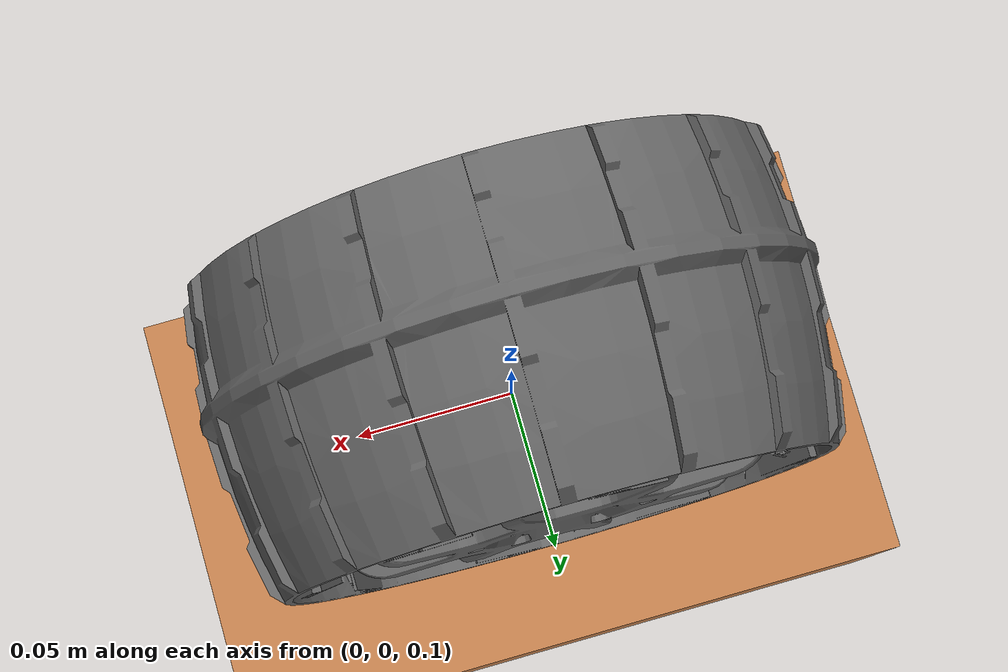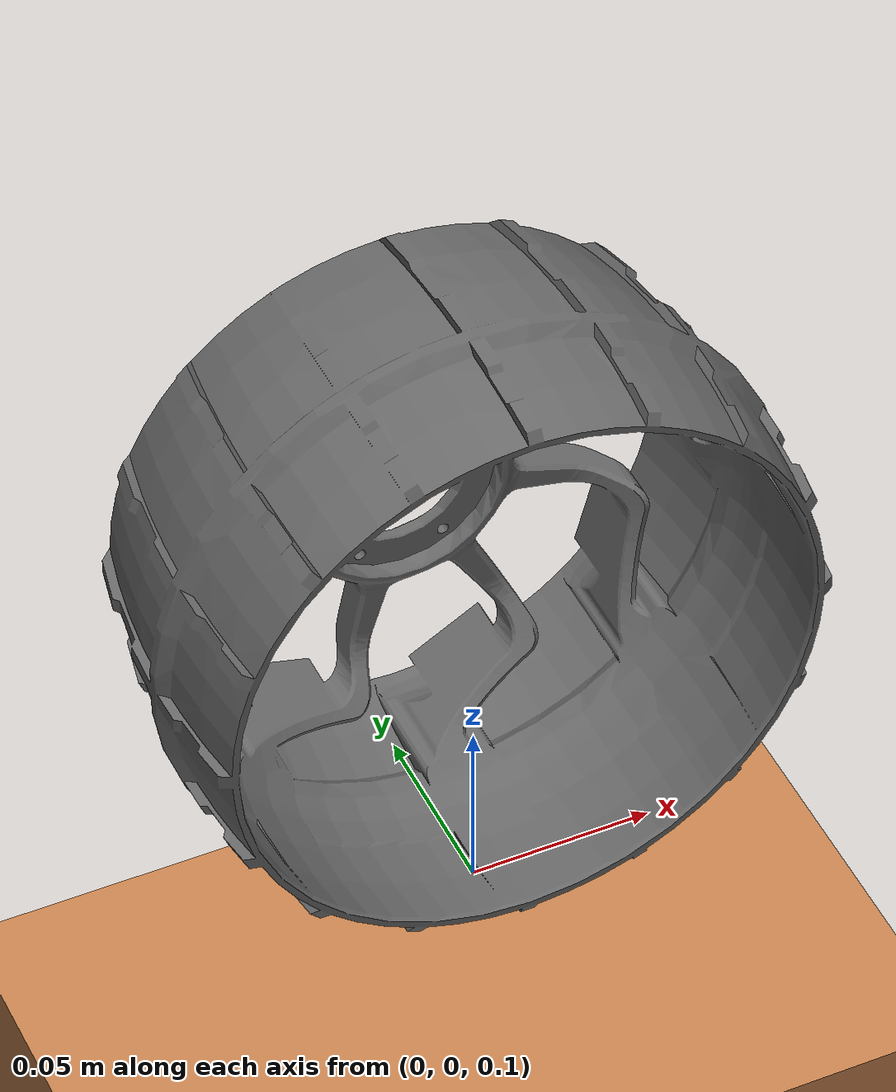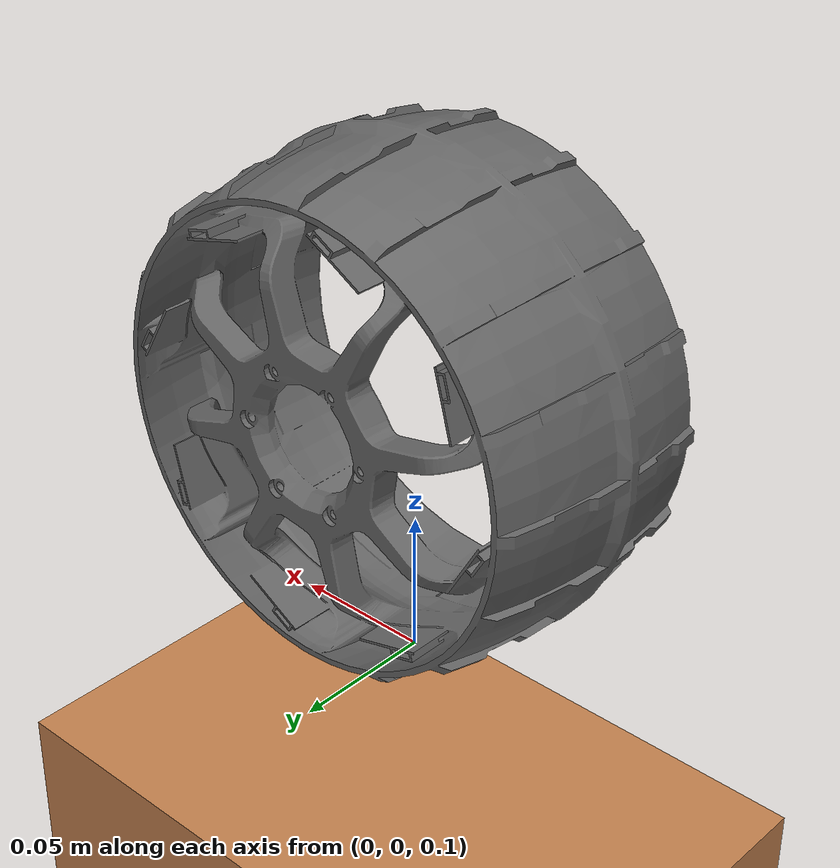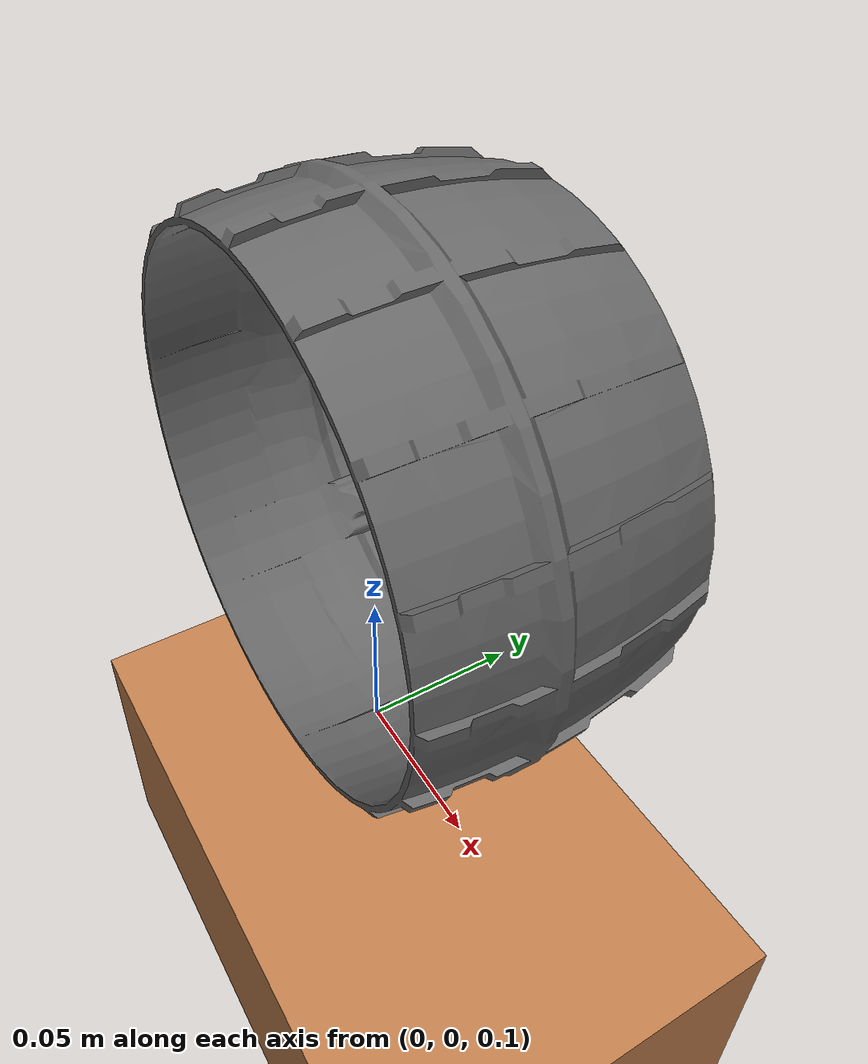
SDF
<?xml version="1.0" ?>
<sdf version="1.8">
  <world name="single_wheel_test">
    <gravity>0 0 -9.81</gravity>
    <physics name="default_physics" type="dart">
      <max_step_size>0.001</max_step_size>
      <real_time_factor>1.0</real_time_factor>
    </physics>

    <!-- Required plugins -->
    <plugin filename="gz-sim-physics-system" name="gz::sim::systems::Physics"/>
    <plugin filename="gz-sim-scene-broadcaster-system" name="gz::sim::systems::SceneBroadcaster"/>
    <plugin filename="gz-sim-user-commands-system" name="gz::sim::systems::UserCommands"/>
    <plugin filename="gz-sim-contact-system" name="gz::sim::systems::Contact"/>

    <!-- Sun -->
    <light type="directional" name="sun">
      <cast_shadows>true</cast_shadows>
      <pose>0 0 10 0 0 0</pose>
      <diffuse>0.8 0.8 0.8 1</diffuse>
      <specular>0.2 0.2 0.2 1</specular>
      <direction>-0.5 0.1 -0.9</direction>
    </light>

    <!-- Flat terrain -->
    <model name="terrain_flat">
      <static>true</static>
      <pose>0 0 0 0 0 0</pose>
      <link name="terrain_link">
        <collision name="terrain_collision">
          <geometry>
            <box><size>20 4 0.1</size></box>
          </geometry>
        </collision>
        <visual name="terrain_visual">
          <geometry>
            <box><size>20 4 0.1</size></box>
          </geometry>
          <material>
            <ambient>0.76 0.50 0.30 1</ambient>
            <diffuse>0.76 0.50 0.30 1</diffuse>
            <specular>0.1 0.1 0.1 1</specular>
          </material>
        </visual>
      </link>
    </model>

    <!-- Single wheel test rig -->
    <model name="test_rig">
      <pose>0 0 0.2 0 0 0</pose>

      <!-- Chassis -->
      <link name="Archimede_base_link_dummy">
        <inertial>
          <mass>10.0</mass>
          <inertia>
            <ixx>0.5</ixx><iyy>0.5</iyy><izz>0.5</izz>
            <ixy>0</ixy><ixz>0</ixz><iyz>0</iyz>
          </inertia>
        </inertial>
      </link>

      <!-- Single wheel -->
      <link name="Archimede_fr_wheel_link">
        <pose relative_to="Archimede_base_link_dummy">0 0 0 0 0 0</pose>
        <inertial>
          <mass>1.0</mass>
          <inertia>
            <ixx>0.05</ixx><iyy>0.05</iyy><izz>0.05</izz>
            <ixy>0</ixy><ixz>0</ixz><iyz>0</iyz>
          </inertia>
        </inertial>
        <collision name="wheel_collision">
          <geometry>
            <sphere><radius>0.085</radius></sphere>
          </geometry>
        </collision>
        <visual name="wheel_visual">
          <pose>0 0.016 0 0 0 0</pose>
          <geometry>
            <mesh>
              <uri>../meshes/wheel_v2.stl</uri>
            </mesh>
          </geometry>
          <material>
            <ambient>0.3 0.3 0.3 1</ambient>
            <diffuse>0.4 0.4 0.4 1</diffuse>
            <specular>0.2 0.2 0.2 1</specular>
          </material>
        </visual>
        <sensor name="fr_contact_sensor" type="contact">
          <always_on>true</always_on>
          <update_rate>1000</update_rate>
          <contact>
            <collision>wheel_collision</collision>
          </contact>
        </sensor>
      </link>

      <!-- Wheel drive joint -->
      <joint name="Archimede_fr_drive_joint" type="revolute">
        <parent>Archimede_base_link_dummy</parent>
        <child>Archimede_fr_wheel_link</child>
        <axis><xyz>0 1 0</xyz></axis>
      </joint>

      <!-- Velocity controller -->
      <plugin filename="gz-sim-joint-controller-system"
              name="gz::sim::systems::JointController">
        <joint_name>Archimede_fr_drive_joint</joint_name>
        <use_force_commands>false</use_force_commands>
        <p_gain>1.0</p_gain>
        <i_gain>0.1</i_gain>
      </plugin>

    </model>
  </world>
</sdf>
